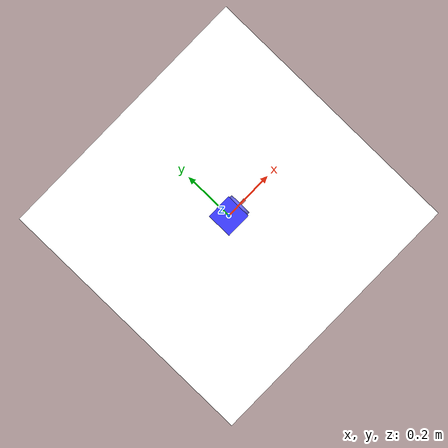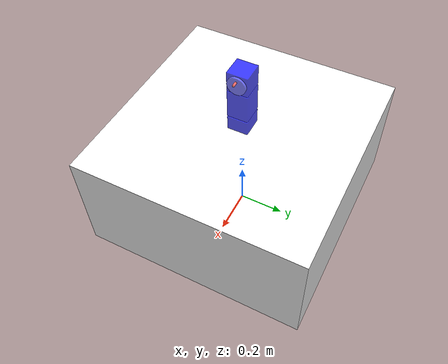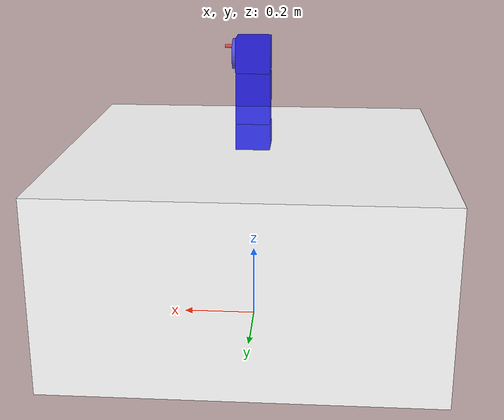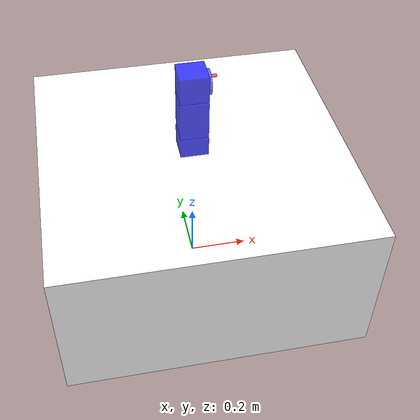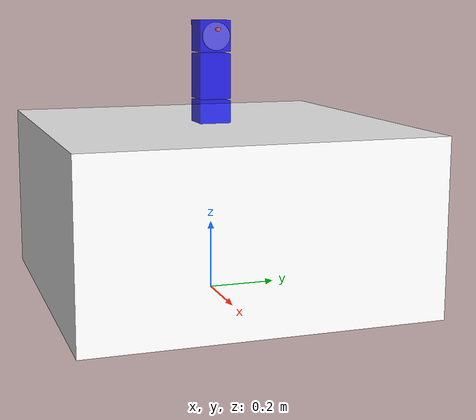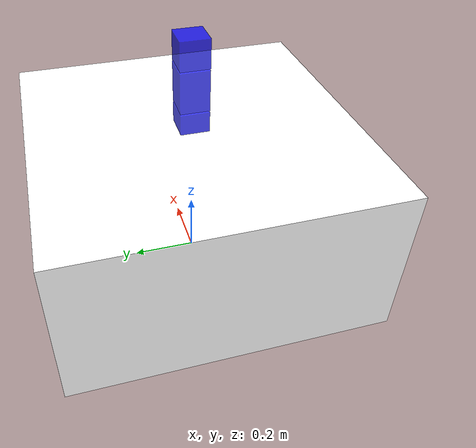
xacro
<?xml version="1.0"?>

<robot name="dummy" xmlns:xacro="http://ros.org/wiki/xacro">

<link name="map"/>

<joint name="map__table" type="fixed">
	<parent link="map"/>
	<child link="table"/>
	<origin xyz="0 0 0.25" rpy="0 0 0"/>
</joint>

<link name="table">
	<visual>
		<geometry>
			<box size="1 1 0.5"/>
		</geometry>
		<material name="White">
			<color rgba="1.0 1.0 1.0 0.9"/>
		</material>
	</visual>
	<collision>
		<geometry>
			<box size="1 1 0.5"/>
		</geometry>
	</collision>
</link>

<joint name="table__base_link" type="fixed">
	<parent link="table"/>
	<child link="base_link"/>
	<origin xyz="0 0 0.25" rpy="0 0 0"/>
</joint>

<link name="base_link">
	<visual>
		<origin xyz="0 0 0.0325" rpy="0 0 0"/>
		<geometry>
			<box size="0.0915 0.09 0.065"/>
		</geometry>
		<material name="Blue">
			<color rgba="0.0 0.0 1.0 0.75"/>
		</material>
	</visual>
</link>

<joint name="base_link__link_1" type="revolute">
	<parent link="base_link"/>
	<child link="link_1"/>
	<origin xyz="0 0 0.1" rpy="0 0 0"/>
	<axis xyz="0 1 0"/>
	<limit effort="1000.0" lower="-3.14" upper="3.14" velocity="0.5"/>
</joint>

<link name="link_1">
	<visual>
		<origin xyz="0 0 0.035" rpy="0 0 0"/>
		<geometry>
			<box size="0.09 0.09 0.13"/>
		</geometry>
		<material name="Blue"/>
	</visual>
</link>

<joint name="link_1__link_2" type="revolute">
	<parent link="link_1"/>
	<child link="link_2"/>
	<origin xyz="0 0 0.09" rpy="0 0 0"/>
	<axis xyz="0 1 0"/>
	<limit effort="1000.0" lower="-3.14" upper="3.14" velocity="0.5"/>
</joint>

<link name="link_2">
	<visual>
		<origin xyz="0 0 0.06" rpy="0 0 0"/>
		<geometry>
			<box size="0.09 0.09 0.09"/>
		</geometry>
		<material name="Blue"/>
	</visual>
</link>

<joint name="link_2__head" type="revolute">
	<parent link="link_2"/>
	<child link="head"/>
	<origin xyz="0.045 0 0.06" rpy="0 0 0"/>
	<axis xyz="1 0 0"/>
	<limit effort="1000.0" lower="-3.14" upper="3.14" velocity="0.5"/>
</joint>

<link name="head">
	<visual>
		<origin xyz="0.005 0 0" rpy="0 1.57 0"/>
		<geometry>
			<cylinder radius="0.04" length="0.01"/>
		</geometry>
		<material name="LightBlue">
			<color rgba="0.25 0.25 1.0 0.75"/>
		</material>
	</visual>
</link>

<joint name="head__laser" type="fixed">
	<parent link="head"/>
	<child link="laser"/>
	<origin xyz="0.01 0 0.02" rpy="0 0 0"/>
</joint>

<link name="laser">
	<visual>
		<origin xyz="0.01 0 0" rpy="0 1.57 0"/>
		<geometry>
			<cylinder radius="0.005" length="0.02"/>
		</geometry>
		<material name="Red">
			<color rgba="1.0 0.25 0.25 0.75"/>
		</material>
	</visual>
</link>

</robot>
